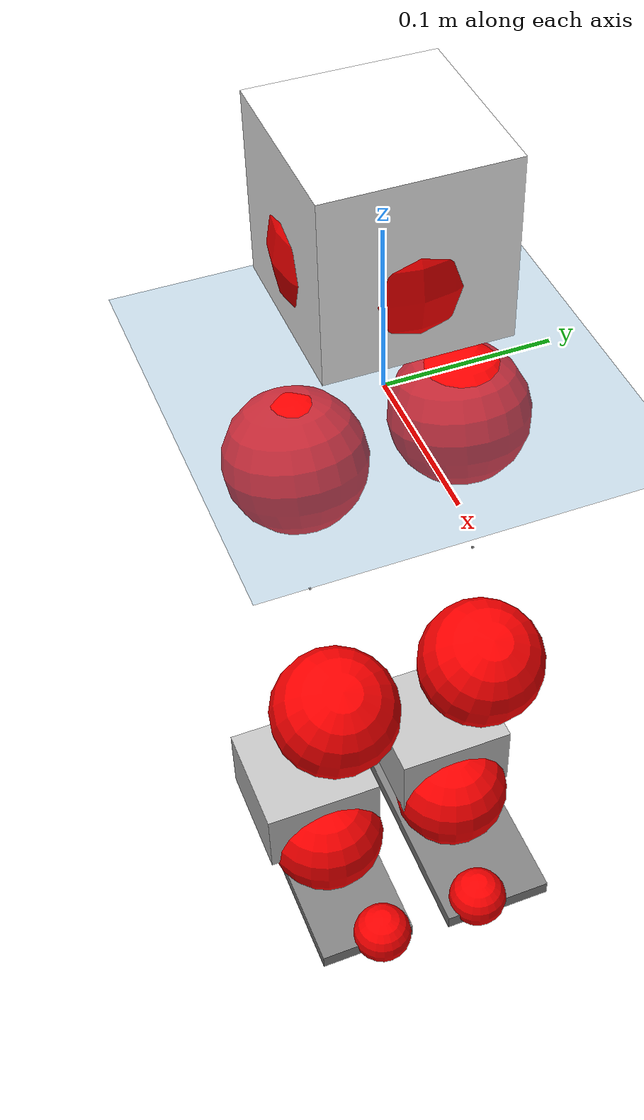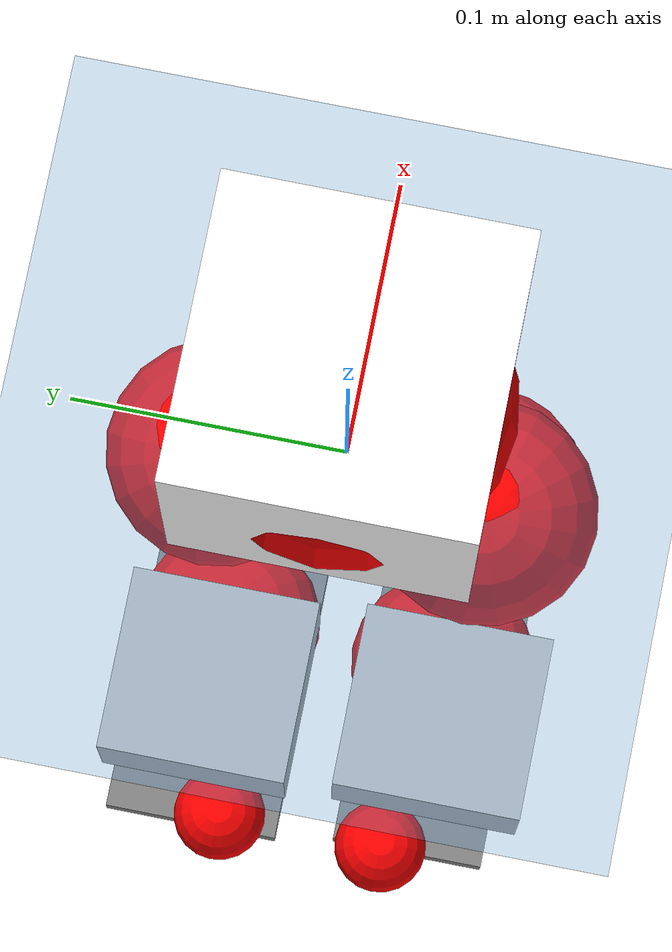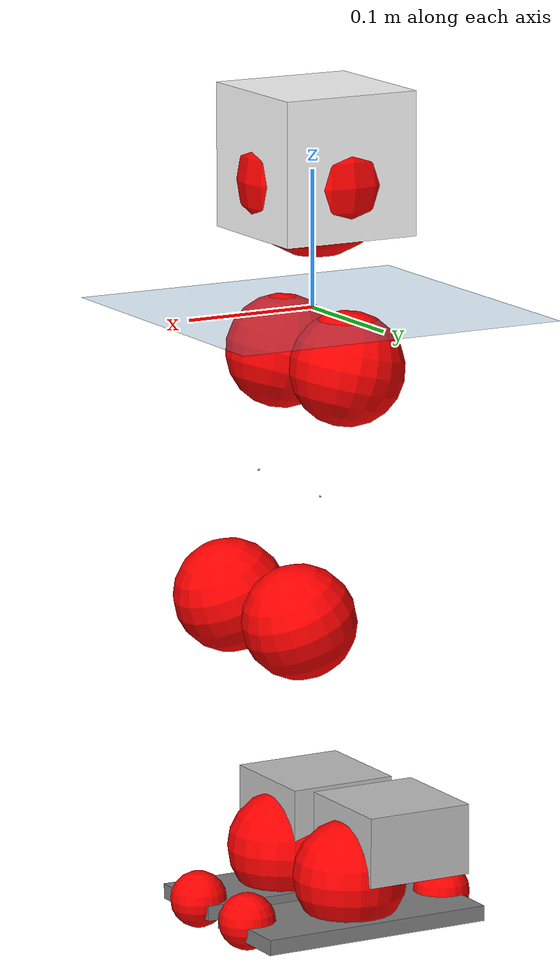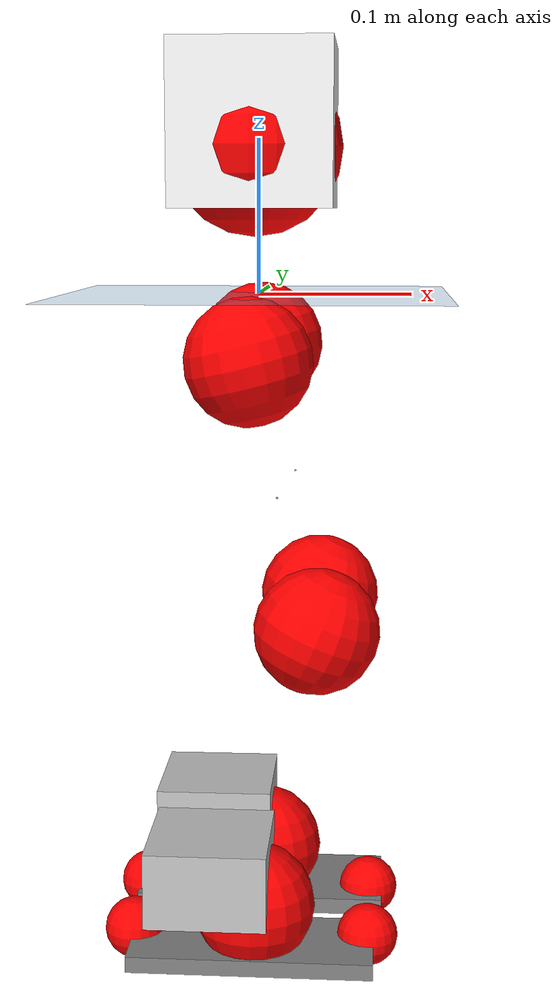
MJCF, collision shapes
<mujoco model="pi_12dof_release_v1">
  <compiler angle="radian" assetdir="assets" balanceinertia="true" inertiafromgeom="false"/>

  <option timestep="0.005" density="1.2" viscosity="2e-05"/>

  <size nkey="1"/>

  <visual>
    <quality shadowsize="8192"/>
    <map shadowclip="0.5"/>
  </visual>

  <default>
    <default class="/">
      <joint armature="0.01" damping="0.01" frictionloss="0.01"/>
      <geom contype="0" conaffinity="0" group="1" solref="-1000 -80"/>
      <site size="0.01 0.005 0.005" group="5"/>
      <general forcelimited="true" biastype="affine" gainprm="20" biasprm="0 -20 -0.5"/>
      <default class="foot">
        <geom size="0.0845 0.036 0.005" type="box" condim="6" group="4" priority="1" friction="0.9 0.2 0.2" solimp="0.015 1 0.005"/>
      </default>
      <default class="reward_collision_sphere">
        <geom group="5" rgba="1 0 0 1"/>
      </default>
    </default>
  </default>

  <asset>
    <texture type="skybox" colorspace="auto" name="//unnamed_texture_0" builtin="gradient" rgb1="0.95 0.95 0.95" rgb2="0.95 0.95 0.95" width="100" height="600"/>
    <texture type="2d" colorspace="auto" name="texplane" builtin="checker" rgb1="0.345 0.575 0.748" rgb2="0.345 0.575 0.748" markrgb="1 1 1" width="512" height="512"/>
    <material name="MatPlane" class="/" texture="texplane" texuniform="true" texrepeat="2 2" specular="0.9"/>
    <mesh name="baselink_1" class="/" file="baselink_1.STL"/>
    <mesh name="r_hip_pitch_link" class="/" file="r_hip_pitch_link.STL"/>
    <mesh name="r_hip_roll_link" class="/" file="r_hip_roll_link.STL"/>
    <mesh name="r_thigh_link" class="/" file="r_thigh_link.STL"/>
    <mesh name="r_calf_link" class="/" file="r_calf_link.STL"/>
    <mesh name="r_ankle_pitch_link" class="/" file="r_ankle_pitch_link.STL"/>
    <mesh name="r_ankle_roll_link" class="/" file="r_ankle_roll_link.STL"/>
    <mesh name="l_hip_pitch_link" class="/" file="l_hip_pitch_link.STL"/>
    <mesh name="l_hip_roll_link" class="/" file="l_hip_roll_link.STL"/>
    <mesh name="l_thigh_link" class="/" file="l_thigh_link.STL"/>
    <mesh name="l_calf_link" class="/" file="l_calf_link.STL"/>
    <mesh name="l_ankle_pitch_link" class="/" file="l_ankle_pitch_link.STL"/>
    <mesh name="l_ankle_roll_link" class="/" file="l_ankle_roll_link.STL"/>
  </asset>

  <worldbody>
    <geom name="floor" class="/" size="100 100 0.125" type="plane" group="0" material="MatPlane"/>
    <light name="toplight_shadow" class="/" pos="0 0 5" dir="0.0990148 0.0990148 -0.990148" type="directional" ambient="0.04 0.04 0.04" diffuse="0.55 0.55 0.55" specular="0.12 0.12 0.12"/>
    <light name="toplight_fill" class="/" pos="0 0 5" dir="0.0990148 0.0990148 -0.990148" type="directional" castshadow="false" ambient="0.04 0.04 0.04" diffuse="0.3 0.3 0.3" specular="0.08 0.08 0.08"/>
    <body name="trunk" pos="-0.00258078 -0.0002914 0.00243966" quat="1 0.000341832 0.000186354 -0.000906318">
      <inertial pos="0.00754466 0.00178879 0.0509328" quat="0.696029 -0.0021188 0.0134806 0.717884" mass="2.35991" diaginertia="0.0239023 0.00082163 0.0167942"/>
      <joint name="//unnamed_joint_0" type="free"/>
      <geom name="//unnamed_geom_1" class="/" type="mesh" density="0" rgba="1 1 1 1" mesh="baselink_1"/>
      <geom name="//unnamed_geom_2" class="/" size="0.0520753 0.0520753 0.0520753" pos="0 0 0.104943" type="box" rgba="1 1 1 1"/>
      <geom name="//unnamed_geom_3" class="reward_collision_sphere" size="0.0572828" pos="0 0 0.0918249"/>
      <site name="imu" class="/" pos="-0.014432 -0.00103786 0.0141931" size="0.0104151"/>
      <camera name="track" class="/" pos="0 -1.2345 0" quat="0.707107 0.707107 0 0" mode="trackcom"/>
      <camera name="ego_camera" class="/" pos="0.0896612 0 0.236121" quat="-0.5 -0.5 0.5 0.5"/>
      <body name="r_hip_pitch_link" pos="0.000654113 -0.0129899 -0.0442288" quat="0.992216 5.86498e-05 -0.124528 1.39038e-05">
        <inertial pos="0.00120197 -0.0340039 2.45949e-05" quat="-0.0182682 0.706944 -0.0277773 0.706487" mass="0.450776" diaginertia="0.000277653 9.42636e-06 0.000341355"/>
        <joint name="r_hip_pitch_joint" class="/" pos="0 0 0" axis="-6.22786e-06 -1 -3.64677e-06" range="-1.71956 1.31844" armature="0.0112843" damping="0.013863" frictionloss="0.00931187"/>
        <geom name="//unnamed_geom_4" class="/" type="mesh" density="0" rgba="0.75294 0.75294 0.75294 1" mesh="r_hip_pitch_link"/>
        <geom name="//unnamed_geom_5" class="/" size="0.000520753 0.000520753 0.000520753" type="box" rgba="0.75294 0.75294 0.75294 1"/>
        <body name="r_hip_roll_link" pos="-0.00108238 -0.0383552 0.00163278" quat="0.999999 0.0010657 5.62512e-05 0.00060753">
          <inertial pos="9.97058e-05 -0.000345444 -0.0791528" quat="0.704443 -0.0761888 -0.0824461 0.700827" mass="0.432801" diaginertia="0.000801694 2.58147e-05 0.000507833"/>
          <joint name="r_hip_roll_joint" class="/" pos="0 0 0" axis="-0.999999 -0.000878865 0.0011694" range="-0.0846447 0.494457" armature="0.0101232" damping="0.0244324" frictionloss="0.00871457"/>
          <geom name="//unnamed_geom_6" class="/" type="mesh" density="0" rgba="0.75294 0.75294 0.75294 1" mesh="r_hip_roll_link"/>
          <geom name="//unnamed_geom_7" class="/" size="0.000520753 0.000520753 0.000520753" type="box" rgba="0.75294 0.75294 0.75294 1"/>
          <geom name="//unnamed_geom_8" class="reward_collision_sphere" size="0.0416602"/>
          <body name="r_thigh_link" pos="-0.00337197 -0.00205699 -0.0887586" quat="0.999999 -0.000783896 0.000494889 0.000929985">
            <inertial pos="0.000297449 0.00395135 -0.0642525" quat="0.736751 0.676156 0.00305953 -0.000920595" mass="0.122448" diaginertia="0.000301691 8.37441e-06 0.000225337"/>
            <joint name="r_thigh_joint" class="/" pos="0 0 0" axis="0.00541551 -0.000250194 -0.999985" stiffness="9.38447e-05" range="-0.29946 0.530016" armature="0.00866415" damping="0" frictionloss="0.011259"/>
            <geom name="//unnamed_geom_9" class="/" type="mesh" density="0" rgba="0.75294 0.75294 0.75294 1" mesh="r_thigh_link"/>
            <geom name="//unnamed_geom_10" class="/" size="0.000520753 0.000520753 0.000520753" type="box" rgba="0.75294 0.75294 0.75294 1"/>
            <body name="r_calf_link" pos="0.00326626 0.00349762 -0.0927984" quat="0.947625 -0.00010491 0.319386 0.000286573">
              <inertial pos="-0.00109645 0.00416916 -0.0920096" quat="0.999877 -0.0056366 0.000760468 -0.0145902" mass="0.933714" diaginertia="0.0089368 0.00031102 0.000700661"/>
              <joint name="r_calf_joint" class="/" pos="0 0 0" axis="-0.00163061 -0.999999 0.000413748" stiffness="0.00991664" range="-1.657 0.691142" armature="0.00942911" damping="0" frictionloss="0.0108995"/>
              <geom name="//unnamed_geom_11" class="/" type="mesh" density="0" rgba="0.75294 0.75294 0.75294 1" mesh="r_calf_link"/>
              <geom name="//unnamed_geom_12" class="/" size="0.000520753 0.000520753 0.000520753" type="box" rgba="0.75294 0.75294 0.75294 1"/>
              <geom name="//unnamed_geom_13" class="reward_collision_sphere" size="0.0416602"/>
              <body name="r_ankle_pitch_link" pos="0.000246336 -0.000194906 -0.182201" quat="0.98005 0.000457426 -0.198747 -0.000586263">
                <inertial pos="0.00270611 3.42946e-05 -0.00132695" quat="0.00234225 0.703566 -0.00254775 0.710622" mass="0.190891" diaginertia="0.000723177 1.9625e-05 0.000435078"/>
                <joint name="r_ankle_pitch_joint" class="/" pos="0 0 0" axis="-0.00106983 -0.999999 -0.000199068" range="-1.33905 0.509066" armature="0.0107861" damping="0.0143792" frictionloss="0.00974465"/>
                <geom name="//unnamed_geom_14" class="/" type="mesh" density="0" rgba="0.75294 0.75294 0.75294 1" mesh="r_ankle_pitch_link"/>
                <geom name="//unnamed_geom_15" class="/" size="0.0406187 0.0416602 0.0260376" type="box" rgba="0.75294 0.75294 0.75294 1"/>
                <body name="r_ankle_roll_link" pos="0.0889815 0.00415999 0.000219381" quat="1 0.000496706 5.22299e-05 0.000181264">
                  <inertial pos="-0.0279399 2.54339e-05 -0.0178422" quat="0.572902 0.433392 0.422849 0.552407" mass="0.587525" diaginertia="0.00280917 8.92691e-05 0.00107882"/>
                  <joint name="r_ankle_roll_joint" class="/" pos="0 0 0" axis="-0.999974 0.00571269 -0.004361" range="-0.142977 0.138341" armature="0.00872517" damping="0.000314087" frictionloss="0.0117613"/>
                  <geom name="//unnamed_geom_16" class="/" type="mesh" density="0" rgba="0.75294 0.75294 0.75294 1" mesh="r_ankle_roll_link"/>
                  <geom name="//unnamed_geom_17" class="/" type="mesh" rgba="0.75294 0.75294 0.75294 1" mesh="r_ankle_roll_link"/>
                  <geom name="right_foot" class="foot" size="0.0828225 0.0340177 0.00557112" pos="-0.0609696 0 -0.0577185"/>
                  <geom name="//unnamed_geom_19" class="reward_collision_sphere" size="0.0416602" pos="-0.0597741 0 -0.0262357"/>
                  <geom name="//unnamed_geom_20" class="reward_collision_sphere" size="0.0208301" pos="0.0179322 0.012345 -0.0524714"/>
                  <geom name="//unnamed_geom_21" class="reward_collision_sphere" size="0.0208301" pos="-0.143458 0.012345 -0.0524714"/>
                  <site name="right_foot" class="foot" pos="-0.0609696 0 -0.0577185" size="0.0104151"/>
                </body>
              </body>
            </body>
          </body>
        </body>
      </body>
      <body name="l_hip_pitch_link" pos="-0.00229074 0.014536 -0.0408124" quat="0.992211 -3.88922e-05 -0.124569 8.08164e-05">
        <inertial pos="0.0017164 0.0335178 0.00327374" quat="-0.0370691 0.704188 0.0337628 0.708241" mass="0.421246" diaginertia="0.000282365 8.7554e-06 0.000368949"/>
        <joint name="l_hip_pitch_joint" class="/" pos="0 0 0" axis="0.00247894 0.999995 0.00193603" range="-1.19649 1.75114" armature="0.0104359" damping="0.0138948" frictionloss="0.0102391"/>
        <geom name="//unnamed_geom_22" class="/" type="mesh" density="0" rgba="0.75294 0.75294 0.75294 1" mesh="l_hip_pitch_link"/>
        <geom name="//unnamed_geom_23" class="/" size="0.000520753 0.000520753 0.000520753" type="box" rgba="0.75294 0.75294 0.75294 1"/>
        <body name="l_hip_roll_link" pos="0.00395085 0.0326802 0.00136031" quat="0.999999 -0.000812616 -0.000309575 0.000569531">
          <inertial pos="0.00224223 0.00255784 -0.0763308" quat="0.701979 -0.0745377 -0.0758523 0.704213" mass="0.426825" diaginertia="0.000855493 2.48801e-05 0.000513754"/>
          <joint name="l_hip_roll_joint" class="/" pos="0 0 0" axis="-0.999854 0.0161789 -0.00558583" range="-0.452798 0.0598308" armature="0.00904173" damping="0.00466626" frictionloss="0.00980199"/>
          <geom name="//unnamed_geom_24" class="/" type="mesh" density="0" rgba="0.75294 0.75294 0.75294 1" mesh="l_hip_roll_link"/>
          <geom name="//unnamed_geom_25" class="/" size="0.000520753 0.000520753 0.000520753" type="box" rgba="0.75294 0.75294 0.75294 1"/>
          <geom name="//unnamed_geom_26" class="reward_collision_sphere" size="0.0416602"/>
          <body name="l_thigh_link" pos="-5.39039e-05 0.00192461 -0.0929428" quat="1 0.0003323 -0.000587718 -0.000113634">
            <inertial pos="0.00167434 -0.00288029 -0.0651226" quat="0.676639 0.736309 0.000221418 0.00303762" mass="0.11931" diaginertia="0.000286008 7.7932e-06 0.000218328"/>
            <joint name="l_thigh_joint" class="/" pos="0 0 0" axis="-0.000998352 0.000956288 -0.999999" stiffness="0.00790964" range="-0.537179 0.2803" armature="0.0116048" damping="0" frictionloss="0.0100107"/>
            <geom name="//unnamed_geom_27" class="/" type="mesh" density="0" rgba="0.75294 0.75294 0.75294 1" mesh="l_thigh_link"/>
            <geom name="//unnamed_geom_28" class="/" size="0.000520753 0.000520753 0.000520753" type="box" rgba="0.75294 0.75294 0.75294 1"/>
            <body name="l_calf_link" pos="-0.00479583 0.00157755 -0.0907965" quat="0.947643 0.000389428 0.31933 0.00095259">
              <inertial pos="-0.000751455 0.00317995 -0.0880412" quat="0.999757 -0.0202292 -0.00807766 0.00349288" mass="0.952659" diaginertia="0.00904781 0.000327225 0.000713059"/>
              <joint name="l_calf_joint" class="/" pos="0 0 0" axis="0.00555256 0.999984 0.00102237" stiffness="0.0125326" range="-0.634505 1.70118" armature="0.00974797" damping="0.0110243" frictionloss="0.0116451"/>
              <geom name="//unnamed_geom_29" class="/" type="mesh" density="0" rgba="0.75294 0.75294 0.75294 1" mesh="l_calf_link"/>
              <geom name="//unnamed_geom_30" class="/" size="0.000520753 0.000520753 0.000520753" type="box" rgba="0.75294 0.75294 0.75294 1"/>
              <geom name="//unnamed_geom_31" class="reward_collision_sphere" size="0.0416602"/>
              <body name="l_ankle_pitch_link" pos="-0.00386423 0.00346237 -0.181043" quat="0.979982 0.000290522 -0.199085 -0.000539483">
                <inertial pos="0.0054647 0.000526227 0.00225322" quat="-0.0028014 0.707349 0.00144839 0.706858" mass="0.19823" diaginertia="0.000750009 1.94492e-05 0.000451082"/>
                <joint name="l_ankle_pitch_joint" class="/" pos="0 0 0" axis="-0.000408014 0.999998 -0.00184371" range="-0.537431 1.29333" armature="0.0101719" damping="0.0106866" frictionloss="0.011522"/>
                <geom name="//unnamed_geom_32" class="/" type="mesh" density="0" rgba="0.75294 0.75294 0.75294 1" mesh="l_ankle_pitch_link"/>
                <geom name="//unnamed_geom_33" class="/" size="0.0406187 0.0416602 0.0260376" type="box" rgba="0.75294 0.75294 0.75294 1"/>
                <body name="l_ankle_roll_link" pos="0.0934126 -0.000885232 -0.0013006" quat="0.999999 0.000628638 0.00122707 -0.000532783">
                  <inertial pos="-0.0300808 -0.00228979 -0.0168209" quat="0.558118 0.43144 0.432819 0.561277" mass="0.571324" diaginertia="0.00272137 9.22671e-05 0.00107359"/>
                  <joint name="l_ankle_roll_joint" class="/" pos="0 0 0" axis="-0.999988 -0.00439435 -0.00194683" stiffness="0.0142133" range="-0.187021 0.149529" armature="0.00986135" damping="0" frictionloss="0.0114313"/>
                  <geom name="//unnamed_geom_34" class="/" type="mesh" density="0" rgba="0.75294 0.75294 0.75294 1" mesh="l_ankle_roll_link"/>
                  <geom name="//unnamed_geom_35" class="/" type="mesh" rgba="0.75294 0.75294 0.75294 1" mesh="l_ankle_roll_link"/>
                  <geom name="left_foot" class="foot" size="0.0883785 0.0390088 0.00566146" pos="-0.0609696 0 -0.0577185"/>
                  <geom name="//unnamed_geom_37" class="reward_collision_sphere" size="0.0416602" pos="-0.0597741 0 -0.0262357"/>
                  <geom name="//unnamed_geom_38" class="reward_collision_sphere" size="0.0208301" pos="0.0179322 -0.012345 -0.0524714"/>
                  <geom name="//unnamed_geom_39" class="reward_collision_sphere" size="0.0208301" pos="-0.143458 -0.012345 -0.0524714"/>
                  <site name="left_foot" class="foot" pos="-0.0609696 0 -0.0577185" size="0.0104151"/>
                </body>
              </body>
            </body>
          </body>
        </body>
      </body>
    </body>
  </worldbody>

  <contact>
    <pair class="/" geom1="floor" geom2="right_foot" name="//unnamed_contact_1"/>
    <pair class="/" geom1="floor" geom2="left_foot" name="//unnamed_contact_0"/>
  </contact>

  <actuator>
    <general name="r_hip_pitch_joint" class="/" joint="r_hip_pitch_joint" forcerange="-21.0679 21.0679" gainprm="23.3726" biasprm="0 -23.3726 -0.524186"/>
    <general name="r_hip_roll_joint" class="/" joint="r_hip_roll_joint" forcerange="-21.6432 21.6432" gainprm="23.3726" biasprm="0 -23.3726 -0.524186"/>
    <general name="r_thigh_joint" class="/" joint="r_thigh_joint" forcerange="-22.6896 22.6896" gainprm="23.3726" biasprm="0 -23.3726 -0.524186"/>
    <general name="r_calf_joint" class="/" joint="r_calf_joint" forcerange="-19.6731 19.6731" gainprm="23.3726" biasprm="0 -23.3726 -0.524186"/>
    <general name="r_ankle_pitch_joint" class="/" joint="r_ankle_pitch_joint" forcerange="-23.5643 23.5643" gainprm="23.3726" biasprm="0 -23.3726 -0.524186"/>
    <general name="r_ankle_roll_joint" class="/" joint="r_ankle_roll_joint" forcerange="-20.5681 20.5681" gainprm="23.3726" biasprm="0 -23.3726 -0.524186"/>
    <general name="l_hip_pitch_joint" class="/" joint="l_hip_pitch_joint" forcerange="-22.5067 22.5067" gainprm="23.3726" biasprm="0 -23.3726 -0.524186"/>
    <general name="l_hip_roll_joint" class="/" joint="l_hip_roll_joint" forcerange="-24.6471 24.6471" gainprm="23.3726" biasprm="0 -23.3726 -0.524186"/>
    <general name="l_thigh_joint" class="/" joint="l_thigh_joint" forcerange="-19.8098 19.8098" gainprm="23.3726" biasprm="0 -23.3726 -0.524186"/>
    <general name="l_calf_joint" class="/" joint="l_calf_joint" forcerange="-21.4492 21.4492" gainprm="23.3726" biasprm="0 -23.3726 -0.524186"/>
    <general name="l_ankle_pitch_joint" class="/" joint="l_ankle_pitch_joint" forcerange="-21.8447 21.8447" gainprm="23.3726" biasprm="0 -23.3726 -0.524186"/>
    <general name="l_ankle_roll_joint" class="/" joint="l_ankle_roll_joint" forcerange="-19.7768 19.7768" gainprm="23.3726" biasprm="0 -23.3726 -0.524186"/>
  </actuator>

  <sensor>
    <gyro site="imu" name="imu_angular_velocity"/>
    <velocimeter site="imu" name="imu_linear_velocity"/>
    <framelinvel objtype="site" objname="left_foot" name="left_foot_global_linear_velocity"/>
    <framelinvel objtype="site" objname="right_foot" name="right_foot_global_linear_velocity"/>
  </sensor>

  <keyframe>
    <key name="home" qpos="0 0 0.291 1 0 0 0 0.4 0 0 -0.8 0.4 0 -0.4 0 0 0.8 -0.4 0"/>
  </keyframe>
</mujoco>
